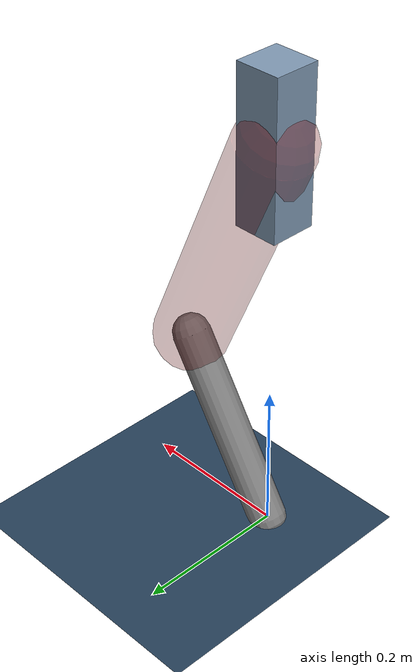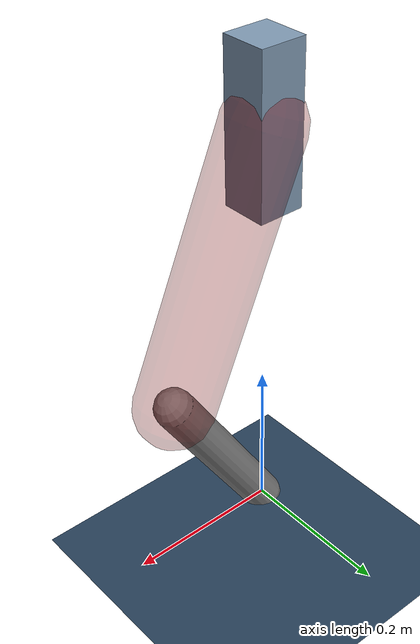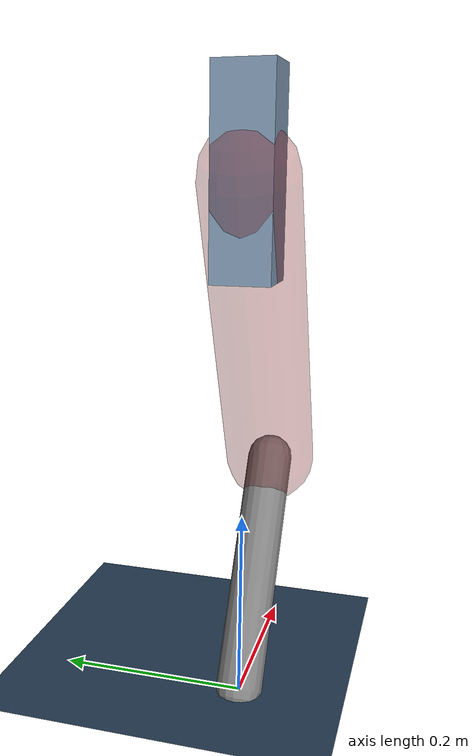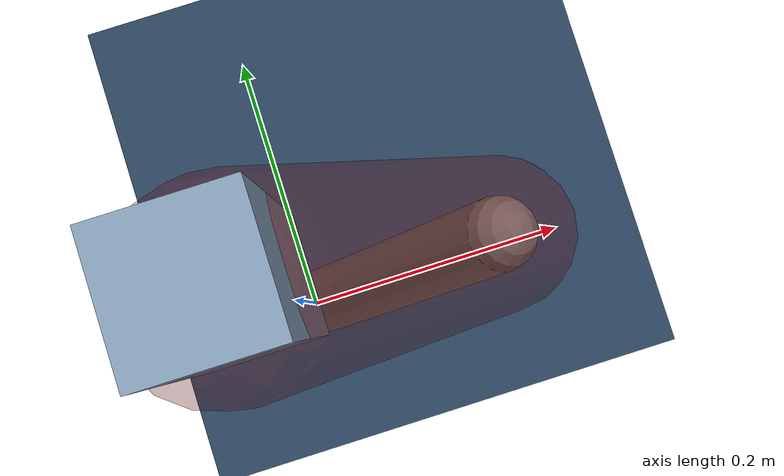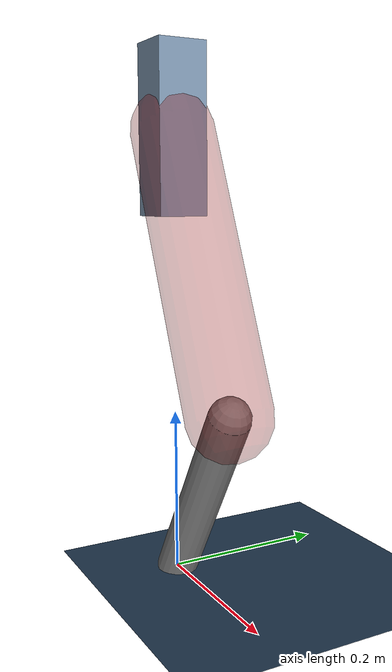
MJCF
<mujoco model="Hopper2D">
	<compiler inertiafromgeom="true" angle="radian" />
	<option timestep="0.001" integrator="implicit" cone="elliptic" solver="Newton" tolerance="1e-10" />

	<default>
		<geom contype="1" conaffinity="1" condim="3" friction="2 0.005 0.0001" solref="0.005 1" />
		<joint limited="true" damping="0.1" />
	</default>

	<asset>
		<texture name="skybox" type="skybox" builtin="gradient" rgb1=".4 .6 .8" rgb2="0 0 0" width="800" height="800" />
		<texture name="grid" type="2d" builtin="checker" rgb1=".1 .2 .3" rgb2=".2 .3 .4" width="300" height="300" mark="edge" markrgb=".2 .3 .4" />
		<material name="ground" texture="grid" texrepeat="1 1" texuniform="true" reflectance="0.1" />
		<material name="leg" rgba="0.5 0.6 0.7 1" />
	</asset>

	<worldbody>

		<geom name="floor" type="plane" size="5 5 0.25" material="ground" />

		<light directional="false" diffuse="0.8 0.8 0.8" specular="0.3 0.3 0.3" pos="0 0 2" dir="0 0 -1" />
		<light mode="targetbodycom" target="base" directional="false" diffuse="0.8 0.8 0.8" specular="0.3 0.3 0.3" pos="0 0 2" dir="0 0 -1" />

		<camera name="fixed" pos="0 -2 1" xyaxes="1 0 0 0 0 1" />
		<camera name="tracking" mode="trackcom" pos="0 -3 1" />

		<body name="root" pos="0 0 0.5409725497982298">
			<joint name="slide_x" type="slide" axis="1 0 0" range="-100 100" />
			<joint name="slide_z" type="slide" axis="0 0 1" range="0 10" />

			<body name="base" pos="0 0 0">
				<geom name="torso" type="box" size="0.03 0.03 0.1" mass="2.2960000000000003" material="leg" />

				<body name="link1" pos="0 0 0" euler="0 1.1586115200576452 0">
					<joint type="hinge" axis="0 -1 0" pos="0 0 0" name="hinge1" limited="true" range="-3.14 3.14" stiffness="0" damping="0.1" />
					<geom name="thigh" type="capsule" fromto="0 0 0 0.3465773530198689 0 0" size="0.05" rgba="0.5 0 0 0.3" mass="1.11707432375762" />

					<body name="link2" pos="0.3465773530198689 0 0" euler="0 0.9682194492637431 0">
						<joint type="hinge" axis="0 -1 0" pos="0 0 0" name="hinge2" limited="true" range="-3.14 3.14" stiffness="0" damping="0.1" />
						<geom name="shank" type="capsule" fromto="0 0 0 0.26304888496407314 0 0" size="0.025" mass="0.4532391079712585" />

					</body>
				</body>
			</body>
		</body>
	</worldbody>

	<actuator>
		<motor name="torque1" joint="hinge1" ctrlrange="-49.96607649605264 49.96607649605264" ctrllimited="true" gear="1" />
		<motor name="torque2" joint="hinge2" ctrlrange="-114.88230243647605 114.88230243647605" ctrllimited="true" gear="1" />
	</actuator>
</mujoco>
